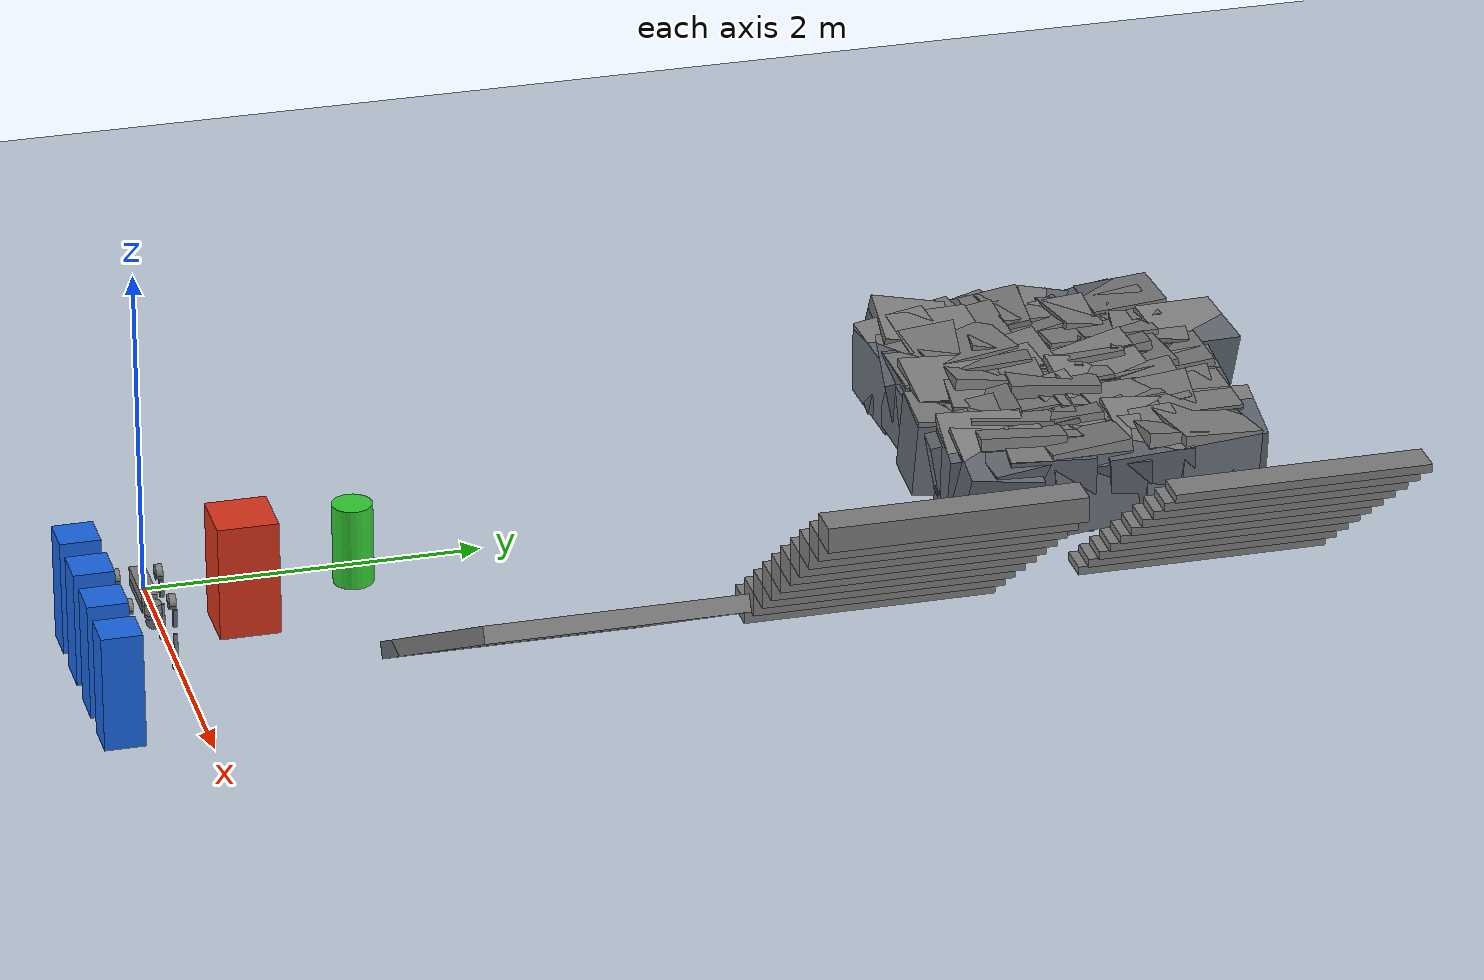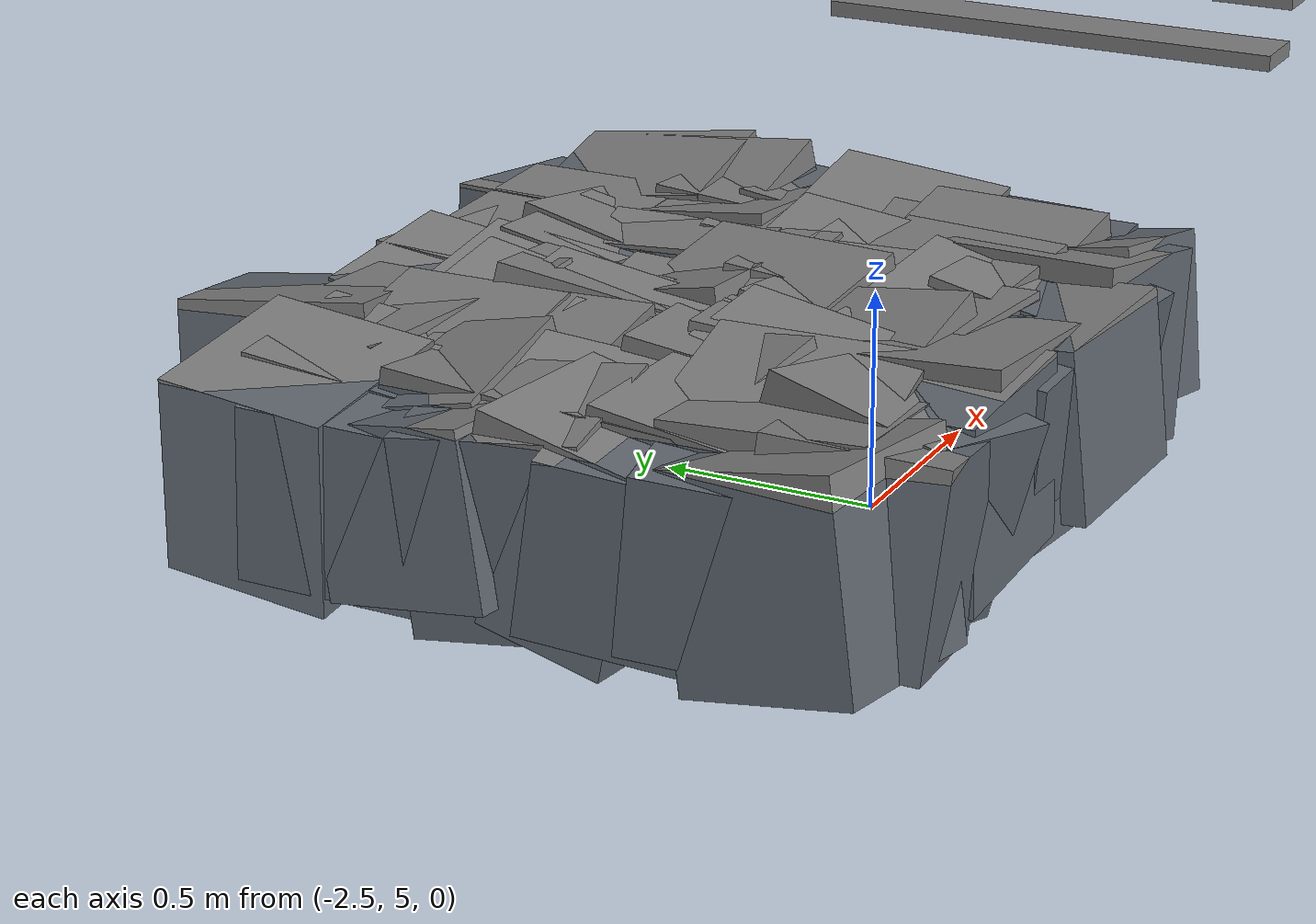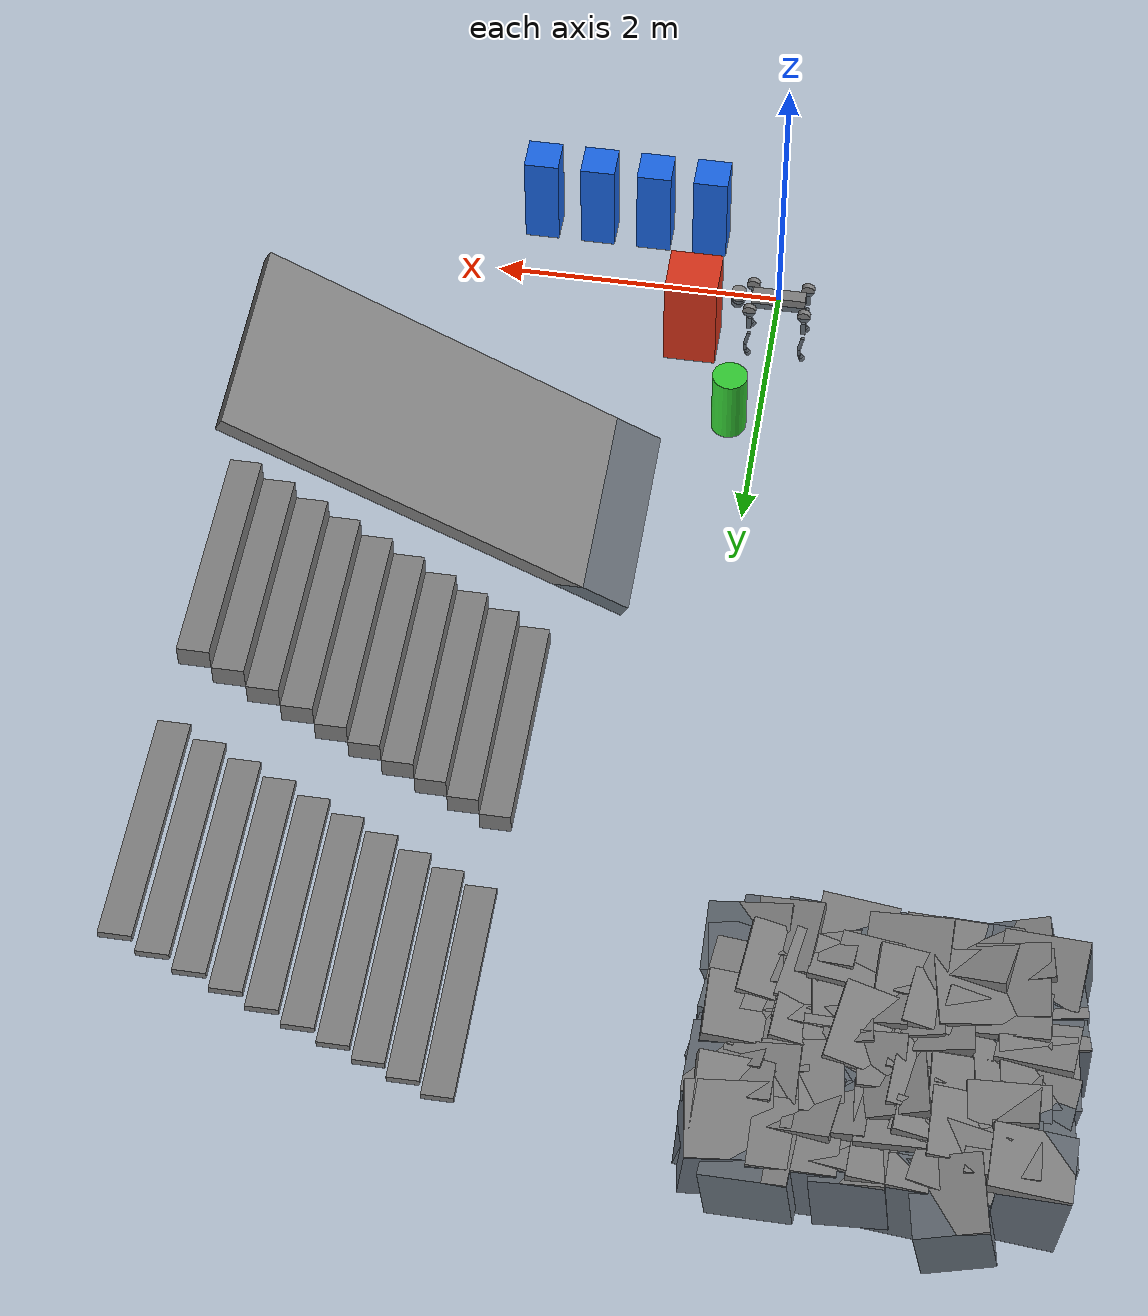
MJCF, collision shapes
<mujoco model="go2 scene">
  <include file="go2_rars01.xml" />

  <statistic center="0 0 0.1" extent="0.8" />

  <visual>
    <headlight diffuse="0.6 0.6 0.6" ambient="0.3 0.3 0.3" specular="0 0 0" />
    <rgba haze="0.15 0.25 0.35 1" />
    <global azimuth="-130" elevation="-20" />
  </visual>

  <asset>
    <texture type="skybox" builtin="gradient" rgb1="0.3 0.5 0.7" rgb2="0 0 0" width="512" height="3072" />
    <texture type="2d" name="groundplane" builtin="checker" mark="edge" rgb1="0.2 0.3 0.4" rgb2="0.1 0.2 0.3" markrgb="0.8 0.8 0.8" width="300" height="300" />
    <material name="groundplane" texture="groundplane" texuniform="true" texrepeat="5 5" reflectance="0.2" /></asset>

  <worldbody>
    <light pos="0 0 1.5" dir="0 0 -1" directional="true" />
    <geom name="floor" group="0" size="0 0 0.05" type="plane" material="groundplane" /><geom pos="2.0 2.0 0.5" type="box" size="1.5 0.75 0.05" quat="0.968912421710645 0.0 -0.24740395925452296 0.0" /><geom pos="1.2 4.0 0.075" type="box" size="0.1 0.75 0.075" quat="1.0 0.0 0.0 0.0" /><geom pos="1.4 4.0 0.22499999999999998" type="box" size="0.1 0.75 0.075" quat="1.0 0.0 0.0 0.0" /><geom pos="1.6 4.0 0.375" type="box" size="0.1 0.75 0.075" quat="1.0 0.0 0.0 0.0" /><geom pos="1.8 4.0 0.525" type="box" size="0.1 0.75 0.075" quat="1.0 0.0 0.0 0.0" /><geom pos="2.0 4.0 0.675" type="box" size="0.1 0.75 0.075" quat="1.0 0.0 0.0 0.0" /><geom pos="2.2 4.0 0.8250000000000001" type="box" size="0.1 0.75 0.075" quat="1.0 0.0 0.0 0.0" /><geom pos="2.4 4.0 0.9750000000000001" type="box" size="0.1 0.75 0.075" quat="1.0 0.0 0.0 0.0" /><geom pos="2.5999999999999996 4.0 1.125" type="box" size="0.1 0.75 0.075" quat="1.0 0.0 0.0 0.0" /><geom pos="2.8 4.0 1.275" type="box" size="0.1 0.75 0.075" quat="1.0 0.0 0.0 0.0" /><geom pos="3.0 4.0 1.4249999999999998" type="box" size="0.1 0.75 0.075" quat="1.0 0.0 0.0 0.0" /><geom pos="1.2 6.0 0.075" type="box" size="0.1 0.75 0.024999999999999994" quat="1.0 0.0 0.0 0.0" /><geom pos="1.4 6.0 0.22499999999999998" type="box" size="0.1 0.75 0.024999999999999994" quat="1.0 0.0 0.0 0.0" /><geom pos="1.6 6.0 0.375" type="box" size="0.1 0.75 0.024999999999999994" quat="1.0 0.0 0.0 0.0" /><geom pos="1.8 6.0 0.525" type="box" size="0.1 0.75 0.024999999999999994" quat="1.0 0.0 0.0 0.0" /><geom pos="2.0 6.0 0.675" type="box" size="0.1 0.75 0.024999999999999994" quat="1.0 0.0 0.0 0.0" /><geom pos="2.2 6.0 0.8250000000000001" type="box" size="0.1 0.75 0.024999999999999994" quat="1.0 0.0 0.0 0.0" /><geom pos="2.4 6.0 0.9750000000000001" type="box" size="0.1 0.75 0.024999999999999994" quat="1.0 0.0 0.0 0.0" /><geom pos="2.5999999999999996 6.0 1.125" type="box" size="0.1 0.75 0.024999999999999994" quat="1.0 0.0 0.0 0.0" /><geom pos="2.8 6.0 1.275" type="box" size="0.1 0.75 0.024999999999999994" quat="1.0 0.0 0.0 0.0" /><geom pos="3.0 6.0 1.4249999999999998" type="box" size="0.1 0.75 0.024999999999999994" quat="1.0 0.0 0.0 0.0" /><geom pos="-2.3004568480001155 5.230133099821309 -0.25" type="box" size="0.2667418434232123 0.23249216246593754 0.2715603840154582" quat="0.9937514109759715 -0.09011523303710722 0.04584049177774514 -0.04728665003473938" /><geom pos="-2.3004568480001155 5.391515746812814 -0.25" type="box" size="0.2505265313539923 0.2412016313894627 0.2264599735410741" quat="0.9947855832976967 0.0430479213794962 0.004496328850963352 0.0923488102512985" /><geom pos="-2.3004568480001155 5.632708194664771 -0.25" type="box" size="0.2744568938089314 0.24992449427731162 0.22801643019685697" quat="0.9927267717486197 0.07160131296835394 -0.005361370104009311 0.09663366051940456" /><geom pos="-2.3004568480001155 5.798990692476225 -0.25" type="box" size="0.24325500647900072 0.2253568952181176 0.26629093934549475" quat="0.9942381647366705 0.09525301325965287 0.00794678229822832 -0.048519932987572345" /><geom pos="-2.3004568480001155 5.973541127254212 -0.25" type="box" size="0.2398510354361266 0.24285052907373605 0.26474659664781297" quat="0.9964084612238755 -0.04106533003165011 -0.0363795415854814 0.06450074437470632" /><geom pos="-2.3004568480001155 6.1770510315939235 -0.25" type="box" size="0.25720829764278585 0.23711879563200236 0.22878298749776027" quat="0.9937658772683013 -0.08834725270306294 0.0169573991826565 -0.06585279591592566" /><geom pos="-2.3004568480001155 6.407180520840007 -0.25" type="box" size="0.24754562515074474 0.25947160159627974 0.23928331743280107" quat="0.9958964892628885 0.04305664599570697 -0.045399565427206114 0.0653849169799509" /><geom pos="-2.3004568480001155 6.629340270719652 -0.25" type="box" size="0.2547590853159438 0.2314305783929404 0.268237133040538" quat="0.9972993669391019 0.044601800582484905 -0.05693885512370222 -0.012752210195468728" /><geom pos="-2.1403960142105545 5.169451405171494 -0.25" type="box" size="0.24860553780818326 0.2298644058617868 0.2557271181931712" quat="0.9914709750904385 0.03140703504746152 0.09964006753412274 0.07791508611647713" /><geom pos="-2.1403960142105545 5.365443034016214 -0.25" type="box" size="0.2291512386430681 0.25867181712863563 0.27347983292603073" quat="0.9971489888939771 -0.012801738465963004 0.06299248639499276 0.039521590273487665" /><geom pos="-2.1403960142105545 5.564856717019695 -0.25" type="box" size="0.23402731407731425 0.26579436660697997 0.2553901560684408" quat="0.9966301905043169 0.07818366455605208 0.024123866909938566 0.005798018388017237" /><geom pos="-2.1403960142105545 5.718290300524951 -0.25" type="box" size="0.26305873229776777 0.22976833293040352 0.2368622332864588" quat="0.9965179080213955 0.04103949917917902 0.06351715359390735 0.035119648334118" /><geom pos="-2.1403960142105545 5.937021976021513 -0.25" type="box" size="0.25829997576988234 0.23777318710233433 0.24146425783496483" quat="0.9934945982010286 0.06600502560370954 -0.06390951813814603 0.06728590812183728" /><geom pos="-2.1403960142105545 6.139922384241892 -0.25" type="box" size="0.23653538925627735 0.2436978135416446 0.240333142471557" quat="0.9965532548871666 0.03912419743215279 0.07314101139716957 0.0011400881032193077" /><geom pos="-2.1403960142105545 6.301771003196722 -0.25" type="box" size="0.2531389078197739 0.24480016352294456 0.2504805521908677" quat="0.9929737504129765 -0.09338521837305551 -0.05209114295204799 0.05068377261169358" /><geom pos="-2.1403960142105545 6.507865639382873 -0.25" type="box" size="0.2276301834358782 0.26649607136000125 0.257729055845175" quat="0.9978879006215207 0.06064426844548832 -0.013463574733080436 0.01899322651086425" /><geom pos="-1.8913580852312173 5.241268832370592 -0.25" type="box" size="0.2626219760929962 0.24411637158707777 0.2607077194593069" quat="0.9875355197654081 0.10169530993875045 0.08550302030532102 -0.0843853936223203" /><geom pos="-1.8913580852312173 5.471949466771439 -0.25" type="box" size="0.2602767497051143 0.273953920565642 0.27337839148294096" quat="0.9958713146560139 0.025763189149319767 -0.029456230012379816 0.08190795592381117" /><geom pos="-1.8913580852312173 5.710208626029221 -0.25" type="box" size="0.23410940494091387 0.2367080582839282 0.24568630976566702" quat="0.9897189155738972 -0.08734156791079449 -0.08044028159717216 -0.07973255148733269" /><geom pos="-1.8913580852312173 5.955348349118732 -0.25" type="box" size="0.23982897662316305 0.23800117277662278 0.2398222460937144" quat="0.9952418019176436 0.05430372873578345 -0.07866554086694699 0.018883681876785678" /><geom pos="-1.8913580852312173 6.185979720159965 -0.25" type="box" size="0.2462147197863695 0.23219524695551647 0.2711440904263542" quat="0.9982254065785714 -0.011567722302419247 -0.05642983491193701 0.015096330467764624" /><geom pos="-1.8913580852312173 6.4251426885516025 -0.25" type="box" size="0.23523910319808664 0.23480755129856565 0.2692163752500142" quat="0.9968448648091833 -0.003964163248548163 -0.07915930034105623 0.004290231091029004" /><geom pos="-1.8913580852312173 6.632084792336812 -0.25" type="box" size="0.2603836051705248 0.2293842626424212 0.26630834239542744" quat="0.9942544585183625 -0.03847116757612908 -0.015013446725097508 -0.09875544237721844" /><geom pos="-1.8913580852312173 6.8677842882805304 -0.25" type="box" size="0.22682173018977822 0.25620373771208627 0.2590106178200968" quat="0.9917966349039323 -0.04622336464814654 0.08055478391174208 0.08782802709142892" /><geom pos="-1.6798294713431876 5.216238277949043 -0.25" type="box" size="0.2632521212844899 0.2402658144953708 0.24841784794218005" quat="0.9997799409897189 -0.003276721590235065 -0.020688201582637684 -0.0011536921125319332" /><geom pos="-1.6798294713431876 5.386856114907906 -0.25" type="box" size="0.26672713061026987 0.24844660721532208 0.23313692749728976" quat="0.9952829473710711 0.07407221696833978 -0.013859958088202382 -0.061098796285541615" /><geom pos="-1.6798294713431876 5.591071097018706 -0.25" type="box" size="0.23246847630546943 0.25230360402816476 0.26125984794942364" quat="0.9935207484320158 0.05042174247872936 -0.08002771662650093 -0.06300583220658486" /><geom pos="-1.6798294713431876 5.741842048926222 -0.25" type="box" size="0.2535630104904315 0.24795359449084495 0.2463449562851746" quat="0.9940727390106978 0.07645301721135746 0.05888786747389042 0.0500654050161026" /><geom pos="-1.6798294713431876 5.905363306176914 -0.25" type="box" size="0.27072344768948214 0.22692489903878324 0.25032679935595825" quat="0.9977180574934882 0.021245636186625227 -0.03211110830763 -0.05546329793388168" /><geom pos="-1.6798294713431876 6.15296609717695 -0.25" type="box" size="0.27075061156330754 0.2600061673600183 0.2621071701382346" quat="0.9954121140543586 0.05159092291611383 -0.07045052751410034 -0.039112952323769316" /><geom pos="-1.6798294713431876 6.366743216660697 -0.25" type="box" size="0.23450857272964362 0.2407163023193743 0.2666025413500864" quat="0.9922247127582067 0.07575177513114786 -0.09279467536142899 -0.03377774683043695" /><geom pos="-1.6798294713431876 6.551643355280989 -0.25" type="box" size="0.26049187301894283 0.27022426120507964 0.23971723837257095" quat="0.9892928509960738 -0.10100280472577938 -0.0600366609488913 -0.0865660889014509" /><geom pos="-1.4765163584841376 5.243937334992851 -0.25" type="box" size="0.26136834696977396 0.2523172670818107 0.2654694500155096" quat="0.9985049365903822 -0.02950096022889073 0.04556436314956665 -0.00644001249885379" /><geom pos="-1.4765163584841376 5.480410750662077 -0.25" type="box" size="0.2440914363505842 0.25654690520997264 0.2583881995141055" quat="0.9933328589616501 -0.06913812509184492 -0.09136238609169695 -0.012754033616475648" /><geom pos="-1.4765163584841376 5.671235516827659 -0.25" type="box" size="0.267137477516981 0.23005560417856358 0.24452561156808555" quat="0.9940257850736071 0.051254350696765066 0.06721387336133489 0.06905088972068747" /><geom pos="-1.4765163584841376 5.845102562083532 -0.25" type="box" size="0.25941410073895627 0.24466997366532126 0.24443215657180062" quat="0.9984794775297112 0.04477338473757268 0.03200898692652765 0.0030824871571849344" /><geom pos="-1.4765163584841376 6.010575440437007 -0.25" type="box" size="0.26435857520274697 0.23236342580867092 0.24142028047228445" quat="0.9988398514879413 0.024463332973345336 -0.03172619531082579 0.026719748323726804" /><geom pos="-1.4765163584841376 6.23782046041485 -0.25" type="box" size="0.24731691273440778 0.25843666448052316 0.2710876107672864" quat="0.9885864324283745 0.08290722719127752 0.09790149547395594 0.07898452052114466" /><geom pos="-1.4765163584841376 6.44930631573619 -0.25" type="box" size="0.24193344533885286 0.23138582308048286 0.26168496711942596" quat="0.9958233764692439 0.07917403843656666 -0.02581247498391686 0.03742980964745321" /><geom pos="-1.4765163584841376 6.684566195548674 -0.25" type="box" size="0.2472173291178155 0.22976521336220676 0.24579788179058876" quat="0.9972709256786985 0.05344665943858395 -0.04768801960369878 -0.01788877237504326" /><geom pos="-1.2836828006996281 5.233446740475545 -0.25" type="box" size="0.270942684859463 0.26600855236486054 0.2296077997678793" quat="0.9990002946606846 0.04415559586693775 -0.005684427367154231 -0.004047456856993205" /><geom pos="-1.2836828006996281 5.446684944046352 -0.25" type="box" size="0.27057165150527335 0.26104170501325036 0.24775613085616044" quat="0.9973272818901999 -0.03585324604105891 -0.0027768638379429824 -0.0636013095230833" /><geom pos="-1.2836828006996281 5.611103486144901 -0.25" type="box" size="0.2581954354219156 0.2469368219651923 0.24036756098125636" quat="0.9936312966887875 0.09017870480124786 0.06642617029778168 -0.012337396017719982" /><geom pos="-1.2836828006996281 5.849517593571514 -0.25" type="box" size="0.27467145474022 0.27400068490578466 0.2735778012229137" quat="0.9916347981074018 -0.026604654441189333 -0.09638112447022586 -0.08162902909144508" /><geom pos="-1.2836828006996281 6.08784409988581 -0.25" type="box" size="0.2572816459813805 0.259301331764223 0.2497915058099132" quat="0.9950820743411886 -0.09067596276893386 0.03956525467724424 0.004911794284056946" /><geom pos="-1.2836828006996281 6.268302962193964 -0.25" type="box" size="0.26840679557573427 0.24608249031753818 0.23034148085004616" quat="0.9987264631057741 -0.005999555326392561 0.04977616980667998 0.005638275223276664" /><geom pos="-1.2836828006996281 6.452965455077986 -0.25" type="box" size="0.2696615447897929 0.26081661469724077 0.23398787146820288" quat="0.9989612372925927 0.017841649129852092 -0.019554827865776687 -0.03709084321393417" /><geom pos="-1.2836828006996281 6.654951201007293 -0.25" type="box" size="0.22785209566881853 0.27041411182510716 0.22695289141832098" quat="0.9976808082331692 0.03654751908061864 0.0573881794303459 -0.001969922316485568" /><geom pos="-1.1022240076453693 5.169887315101382 -0.25" type="box" size="0.24568156256299087 0.2635458084468657 0.23696692094202776" quat="0.9976285263249234 -0.04727185302576902 -0.02566280149473634 -0.042943171677399916" /><geom pos="-1.1022240076453693 5.372429939447899 -0.25" type="box" size="0.2516688550863544 0.23578708851703795 0.24914385885416668" quat="0.9941624724694053 0.09013134822717399 -0.04630034936782676 -0.03706205672502057" /><geom pos="-1.1022240076453693 5.6137494696611645 -0.25" type="box" size="0.22749023618822067 0.24285395850499641 0.24637028208799674" quat="0.9967312863374155 0.005751481746199076 -0.05486898441393531 0.059017436773105766" /><geom pos="-1.1022240076453693 5.770800416787369 -0.25" type="box" size="0.2276194600060337 0.2435732223750303 0.24204342448231905" quat="0.9920706838842173 0.06455834978420948 0.0818398501660238 0.0702155009627047" /><geom pos="-1.1022240076453693 6.010227875016116 -0.25" type="box" size="0.23543804149884645 0.2269013461561202 0.24892831056369055" quat="0.998711981938567 -0.03666909121332045 -0.03413771353158816 0.008023178719471372" /><geom pos="-1.1022240076453693 6.1826505134127485 -0.25" type="box" size="0.24899669756063647 0.26476302864941026 0.23114478496336716" quat="0.9953459379310479 0.017391324820533183 -0.06570106494388459 0.06831819472431061" /><geom pos="-1.1022240076453693 6.388783936685348 -0.25" type="box" size="0.25120043442125733 0.26689280714606495 0.24739435973617288" quat="0.9952950358990744 0.0890051431533475 0.03711428378869703 -0.009402443606032512" /><geom pos="-1.1022240076453693 6.587736073361409 -0.25" type="box" size="0.2642095458486848 0.24402513111878274 0.2283749318977764" quat="0.9945884112549138 0.06171449469705757 0.01930392852096236 -0.0813177206110156" /><geom pos="-0.9187514747556267 5.228003088997437 -0.25" type="box" size="0.24129840773289313 0.24455559893829074 0.2445571703602056" quat="0.9953979563394082 0.08620026031447912 0.017037154839366485 -0.03823818761429045" /><geom pos="-0.9187514747556267 5.477124560461694 -0.25" type="box" size="0.24144830521194344 0.24988466026108996 0.2605757117908711" quat="0.9930966738408729 -0.02303914715636593 -0.07543241677172038 -0.08682248904793939" /><geom pos="-0.9187514747556267 5.6503609706110804 -0.25" type="box" size="0.23011493841284475 0.26688543937158404 0.23459245932111464" quat="0.995309745085509 0.0812194368838277 -0.028988475523879075 -0.043835860854957456" /><geom pos="-0.9187514747556267 5.8167410379088915 -0.25" type="box" size="0.2696701537399713 0.22808315813449612 0.24632246265018862" quat="0.9941630275322185 0.03659276523626464 -0.09418317633389955 -0.03782027916336502" /><geom pos="-0.9187514747556267 5.973448532783488 -0.25" type="box" size="0.26529485159027155 0.2568090828246225 0.22616198518784458" quat="0.9934152082258639 -0.0668204374116078 0.015261332203502648 0.09180601804380455" /><geom pos="-0.9187514747556267 6.208232057412713 -0.25" type="box" size="0.2463750931460119 0.23519736105411657 0.2618256268798009" quat="0.9980851779059088 -0.01670862812995911 -3.238808720187859e-05 0.05955500265768949" /><geom pos="-0.9187514747556267 6.439579230099216 -0.25" type="box" size="0.2671845676845725 0.23031566769931494 0.24269863858722673" quat="0.9922913628004445 0.08627005615594627 0.0653962412457561 -0.060321309281323385" /><geom pos="-0.9187514747556267 6.633593518531561 -0.25" type="box" size="0.27010683807652197 0.24026832629919917 0.2557918997199297" quat="0.9999490997296441 0.00028597626760271176 -0.008743036015975394 0.005027473388523378" /><geom pos="-0.6893496373603325 5.248968856916747 -0.25" type="box" size="0.2534396264226809 0.2550821014195557 0.2650999344163818" quat="0.9951379017729395 -0.009374906590221065 0.08659926506304164 -0.04596993443455758" /><geom pos="-0.6893496373603325 5.461239078170235 -0.25" type="box" size="0.27229416577728716 0.26237025850176243 0.2609095281015494" quat="0.9938642581071668 -0.016468144238788375 -0.09891284963880534 -0.04667852674145426" /><geom pos="-0.6893496373603325 5.687178260089661 -0.25" type="box" size="0.23752403278908404 0.24697938830167748 0.22849345269591703" quat="0.9934662197384913 -0.04679303055164773 0.04759125915532222 -0.09257620959142457" /><geom pos="-0.6893496373603325 5.872882308537633 -0.25" type="box" size="0.24532351042284706 0.2346108686684232 0.23000406308837146" quat="0.9927088825119093 -0.020825844871975006 -0.07387314031868909 -0.0929414757079957" /><geom pos="-0.6893496373603325 6.041093594701471 -0.25" type="box" size="0.2400001363070752 0.23338893797592625 0.23790746686600803" quat="0.9938226730954234 0.05804194043958964 0.018064293769886098 0.09285100366754209" /><geom pos="-0.6893496373603325 6.255174847428153 -0.25" type="box" size="0.23526596901866062 0.24028315614672 0.25067741337911276" quat="0.9968794677864197 -0.0562851518151626 0.055258342000963814 0.003134330919540954" /><geom pos="-0.6893496373603325 6.482563337699631 -0.25" type="box" size="0.2371955841450388 0.23449361110299885 0.22578295347747088" quat="0.9983417083561725 0.019060355462012728 0.0390427253010296 -0.037765087146858146" /><geom pos="-0.6893496373603325 6.720404792567244 -0.25" type="box" size="0.2691396588773104 0.24560338138780002 0.22875047396233128" quat="0.9977277785730543 -0.00018196030407207167 0.05888258853415548 -0.0327427476190394" /><geom pos="-0.5024823808281569 5.243215256907448 -0.25" type="box" size="0.2664190000950855 0.23193429497031293 0.2256412468995084" quat="0.9923480752257597 -0.0775266795954823 0.096093780616666 -0.0009470340146058532" /><geom pos="-0.5024823808281569 5.408443418302384 -0.25" type="box" size="0.22988754041124168 0.23383904290144142 0.24112107194436588" quat="0.9950978972186256 0.02104571309984771 0.06552972397065362 0.07101484483907931" /><geom pos="-0.5024823808281569 5.593298346565085 -0.25" type="box" size="0.23937371319909267 0.2613467949248377 0.24575122985464729" quat="0.9984691487491184 -0.007621815772156767 0.010729111312567314 -0.053722928912984906" /><geom pos="-0.5024823808281569 5.833573467357344 -0.25" type="box" size="0.2621981400994321 0.24827277799235026 0.2599489001761954" quat="0.9965799738925856 0.0461064749899981 -0.06814681716564386 0.00765244473635177" /><geom pos="-0.5024823808281569 5.987211314681463 -0.25" type="box" size="0.23685424606606761 0.22901316218866397 0.22658193235149277" quat="0.992587295998121 0.042095349114379794 0.090020559870156 -0.06996241996058189" /><geom pos="-0.5024823808281569 6.191809900984576 -0.25" type="box" size="0.2697477262181022 0.26160032283159856 0.2514154359253294" quat="0.9987428184279926 0.03211553967794984 0.03713990933426557 -0.010099598227023016" /><geom pos="-0.5024823808281569 6.411285541920249 -0.25" type="box" size="0.26327819993915696 0.2714861589666563 0.2579565419996769" quat="0.9938745790994166 -0.05002470116842947 -0.097675298645099 0.01305321138870088" /><geom pos="-0.5024823808281569 6.5701617398718914 -0.25" type="box" size="0.26691018196306854 0.2535040767291905 0.26963989926936244" quat="0.9956469229609891 -0.050958369126028226 -0.03839181101974538 0.06794496494188768" />
    <!-- Stage4D semantic test landmarks; static collision geometry only. -->
    <body name="stage4d_landmarks" pos="0 0 0">
      <geom name="stage4d_obstacle_single_01" type="box" pos="0.55 0.48 0.35" size="0.18 0.18 0.35" rgba="0.85 0.2 0.1 1" group="0"/>
      <geom name="stage4d_corridor_left_01" type="box" pos="0.55 -0.48 0.35" size="0.12 0.12 0.35" rgba="0.1 0.4 0.9 1" group="0"/>
      <geom name="stage4d_corridor_right_01" type="box" pos="0.95 -0.48 0.35" size="0.12 0.12 0.35" rgba="0.1 0.4 0.9 1" group="0"/>
      <geom name="stage4d_corridor_left_02" type="box" pos="1.35 -0.48 0.35" size="0.12 0.12 0.35" rgba="0.1 0.4 0.9 1" group="0"/>
      <geom name="stage4d_corridor_right_02" type="box" pos="1.75 -0.48 0.35" size="0.12 0.12 0.35" rgba="0.1 0.4 0.9 1" group="0"/>
      <geom name="stage4d_landmark_d3" type="cylinder" pos="0.2 1.2 0.25" size="0.12 0.25" contype="0" conaffinity="0" rgba="0.2 0.8 0.2 1" group="0"/>
    </body>
</worldbody>
</mujoco>

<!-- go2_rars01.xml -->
<mujoco model="go2_rars01">
  <compiler angle="radian" />
  <option timestep="0.002" cone="elliptic" impratio="100" />
  <default>
    <default class="robot_collision">
      <geom group="3" />
    </default>
    <default class="go2_collision">
      <geom group="3" friction=".8" margin=".001" condim="1" />
    </default>
    <default class="go2_leg">
      <joint damping=".1" armature=".01" frictionloss=".2" />
      <geom group="3" friction=".8" margin=".001" condim="1" />
    </default>
    <default class="go2_foot">
      <geom group="3" priority="1" condim="6" friction=".8 .02 .01" />
    </default>
  </default>
  <asset>
    <mesh name="arm_mount_link" content_type="model/obj" file="assets/rars01/arm_mount_link.obj" />
    <mesh name="base_link" content_type="model/obj" file="assets/rars01/base_link.obj" />
    <mesh name="link1_m0" content_type="model/obj" file="assets/rars01/link1_m0.obj" />
    <mesh name="link2_m1" content_type="model/obj" file="assets/rars01/link2_m1.obj" />
    <mesh name="link2_m2" content_type="model/obj" file="assets/rars01/link2_m2.obj" />
    <mesh name="link_3_m3" content_type="model/obj" file="assets/rars01/link_3_m3.obj" />
    <mesh name="link_4_m4" content_type="model/obj" file="assets/rars01/link_4_m4.obj" />
    <mesh name="link_5_m5" content_type="model/obj" file="assets/rars01/link_5_m5.obj" />
    <mesh name="End_link" content_type="model/obj" file="assets/rars01/End_link.obj" />
    <mesh name="gripper_left" content_type="model/obj" file="assets/rars01/gripper_left.obj" />
    <mesh name="gripper_right" content_type="model/obj" file="assets/rars01/gripper_right.obj" />
    <material name="metal" rgba=".9 .95 .95 1" />
    <material name="black" rgba="0 0 0 1" />
    <material name="white" rgba="1 1 1 1" />
    <material name="gray" rgba="0.671705 0.692426 0.774270 1" />
    <mesh file="../go2/assets/base_0.obj" />
    <mesh file="../go2/assets/base_1.obj" />
    <mesh file="../go2/assets/base_2.obj" />
    <mesh file="../go2/assets/base_3.obj" />
    <mesh file="../go2/assets/base_4.obj" />
    <mesh file="../go2/assets/hip_0.obj" />
    <mesh file="../go2/assets/hip_1.obj" />
    <mesh file="../go2/assets/thigh_0.obj" />
    <mesh file="../go2/assets/thigh_1.obj" />
    <mesh file="../go2/assets/thigh_mirror_0.obj" />
    <mesh file="../go2/assets/thigh_mirror_1.obj" />
    <mesh file="../go2/assets/calf_0.obj" />
    <mesh file="../go2/assets/calf_1.obj" />
    <mesh file="../go2/assets/calf_mirror_0.obj" />
    <mesh file="../go2/assets/calf_mirror_1.obj" />
    <mesh file="../go2/assets/foot.obj" />
  </asset>
  <worldbody>
    <body name="base">
      <freejoint name="base_freejoint" />
      <inertial pos="0.021112 0 -0.005366" quat="-0.000543471 0.713435 -0.00173769 0.700719" mass="6.921" diaginertia="0.107027 0.0980771 0.0244531" />
      <geom name="base_collision" class="go2_collision" size="0.1881 0.04675 0.057" type="box" />
      <body name="Head_upper" pos="0.285 0 0.01">
        <inertial pos="0 0 0" mass="0.001" diaginertia="9.6e-06 9.6e-06 9.6e-06" />
        <geom class="go2_collision" size="0.05 0.045" type="cylinder" />
        <body name="Head_lower" pos="0.008 0 -0.07">
          <inertial pos="0 0 0" mass="0.001" diaginertia="9.6e-06 9.6e-06 9.6e-06" />
          <geom class="go2_collision" size="0.047" />
        </body>
      </body>
      <body name="FL_hip" childclass="go2_leg" pos="0.1934 0.0465 0">
        <inertial pos="-0.0054 0.00194 -0.000105" quat="0.497014 0.499245 0.505462 0.498237" mass="0.678" diaginertia="0.00088403 0.000596003 0.000479967" />
        <joint name="FL_hip_joint" pos="0 0 0" axis="1 0 0" range="-1.0472 1.0472" actuatorfrcrange="-23.7 23.7" />
        <geom size="0.046 0.02" pos="0 0.08 0" quat="0.707107 0.707107 0 0" type="cylinder" />
        <body name="FL_thigh" pos="0 0.0955 0">
          <inertial pos="-0.00374 -0.0223 -0.0327" quat="0.829533 0.0847635 -0.0200632 0.551623" mass="1.152" diaginertia="0.00594973 0.00584149 0.000878787" />
          <joint name="FL_thigh_joint" pos="0 0 0" axis="0 1 0" range="-1.5708 3.4907" actuatorfrcrange="-23.7 23.7" />
          <geom size="0.055 0.01225 0.017" pos="0 0 -0.1065" quat="0.707107 0 0.707107 0" type="box" />
          <body name="FL_calf" pos="0 0 -0.213">
            <inertial pos="0.00548 -0.000975 -0.115" quat="0.715503 -0.00296111 -0.00858046 0.698551" mass="0.154" diaginertia="0.00110008 0.00108027 3.25534e-05" />
            <joint name="FL_calf_joint" pos="0 0 0" axis="0 1 0" range="-2.7227 -0.83776" actuatorfrcrange="-35.55 35.55" />
            <geom size="0.012 0.06" pos="0.008 0 -0.06" quat="0.994493 0 -0.104807 0" type="cylinder" />
            <body name="FL_calflower" pos="0.02 0 -0.148" quat="0.999688 0 0.0249974 0">
              <geom size="0.011 0.0325" type="cylinder" />
              <body name="FL_calflower1" pos="-0.01 0 -0.04" quat="0.971338 0 0.237703 0">
                <geom size="0.0155 0.015" type="cylinder" />
              </body>
            </body>
            <body name="FL_foot" pos="0 0 -0.213">
              <inertial pos="0 0 0" mass="0.04" diaginertia="9.6e-06 9.6e-06 9.6e-06" />
              <geom name="FL_foot_collision" class="go2_foot" size="0.022" pos="-0.002 0 0" />
            </body>
            <geom mesh="calf_0" material="gray" type="mesh" contype="0" conaffinity="0" group="2" />
            <geom mesh="calf_1" material="black" type="mesh" contype="0" conaffinity="0" group="2" />
            <geom pos="0 0 -0.213" mesh="foot" material="black" type="mesh" contype="0" conaffinity="0" group="2" />
          </body>
          <geom mesh="thigh_0" material="metal" type="mesh" contype="0" conaffinity="0" group="2" />
          <geom mesh="thigh_1" material="gray" type="mesh" contype="0" conaffinity="0" group="2" />
        </body>
        <geom mesh="hip_0" material="metal" type="mesh" contype="0" conaffinity="0" group="2" />
        <geom mesh="hip_1" material="gray" type="mesh" contype="0" conaffinity="0" group="2" />
      </body>
      <body name="FR_hip" childclass="go2_leg" pos="0.1934 -0.0465 0">
        <inertial pos="-0.0054 -0.00194 -0.000105" quat="0.498237 0.505462 0.499245 0.497014" mass="0.678" diaginertia="0.00088403 0.000596003 0.000479967" />
        <joint name="FR_hip_joint" pos="0 0 0" axis="1 0 0" range="-1.0472 1.0472" actuatorfrcrange="-23.7 23.7" />
        <geom size="0.046 0.02" pos="0 -0.08 0" quat="0.707107 0.707107 0 0" type="cylinder" />
        <body name="FR_thigh" pos="0 -0.0955 0">
          <inertial pos="-0.00374 0.0223 -0.0327" quat="0.551623 -0.0200632 0.0847635 0.829533" mass="1.152" diaginertia="0.00594973 0.00584149 0.000878787" />
          <joint name="FR_thigh_joint" pos="0 0 0" axis="0 1 0" range="-1.5708 3.4907" actuatorfrcrange="-23.7 23.7" />
          <geom size="0.055 0.01225 0.017" pos="0 0 -0.1065" quat="0.707107 0 0.707107 0" type="box" />
          <body name="FR_calf" pos="0 0 -0.213">
            <inertial pos="0.00548 0.000975 -0.115" quat="0.698551 -0.00858046 -0.00296111 0.715503" mass="0.154" diaginertia="0.00110008 0.00108027 3.25534e-05" />
            <joint name="FR_calf_joint" pos="0 0 0" axis="0 1 0" range="-2.7227 -0.83776" actuatorfrcrange="-35.55 35.55" />
            <geom size="0.013 0.06" pos="0.01 0 -0.06" quat="0.995004 0 -0.0998334 0" type="cylinder" />
            <body name="FR_calflower" pos="0.02 0 -0.148" quat="0.999688 0 0.0249974 0">
              <geom size="0.011 0.0325" type="cylinder" />
              <body name="FR_calflower1" pos="-0.01 0 -0.04" quat="0.971338 0 0.237703 0">
                <geom size="0.0155 0.015" type="cylinder" />
              </body>
            </body>
            <body name="FR_foot" pos="0 0 -0.213">
              <inertial pos="0 0 0" mass="0.04" diaginertia="9.6e-06 9.6e-06 9.6e-06" />
              <geom name="FR_foot_collision" class="go2_foot" size="0.022" pos="-0.002 0 0" />
            </body>
            <geom mesh="calf_mirror_0" material="gray" type="mesh" contype="0" conaffinity="0" group="2" />
            <geom mesh="calf_mirror_1" material="black" type="mesh" contype="0" conaffinity="0" group="2" />
            <geom pos="0 0 -0.213" mesh="foot" material="black" type="mesh" contype="0" conaffinity="0" group="2" />
          </body>
          <geom mesh="thigh_mirror_0" material="metal" type="mesh" contype="0" conaffinity="0" group="2" />
          <geom mesh="thigh_mirror_1" material="gray" type="mesh" contype="0" conaffinity="0" group="2" />
        </body>
        <geom mesh="hip_0" material="metal" quat="4.63268e-05 1 0 0" type="mesh" contype="0" conaffinity="0" group="2" />
        <geom mesh="hip_1" material="gray" quat="4.63268e-05 1 0 0" type="mesh" contype="0" conaffinity="0" group="2" />
      </body>
      <body name="RL_hip" childclass="go2_leg" pos="-0.1934 0.0465 0">
        <inertial pos="0.0054 0.00194 -0.000105" quat="0.505462 0.498237 0.497014 0.499245" mass="0.678" diaginertia="0.00088403 0.000596003 0.000479967" />
        <joint name="RL_hip_joint" pos="0 0 0" axis="1 0 0" range="-1.0472 1.0472" actuatorfrcrange="-23.7 23.7" />
        <geom size="0.046 0.02" pos="0 0.08 0" quat="0.707107 0.707107 0 0" type="cylinder" />
        <body name="RL_thigh" pos="0 0.0955 0">
          <inertial pos="-0.00374 -0.0223 -0.0327" quat="0.829533 0.0847635 -0.0200632 0.551623" mass="1.152" diaginertia="0.00594973 0.00584149 0.000878787" />
          <joint name="RL_thigh_joint" pos="0 0 0" axis="0 1 0" range="-0.5236 4.5379" actuatorfrcrange="-23.7 23.7" />
          <geom size="0.055 0.01225 0.017" pos="0 0 -0.1065" quat="0.707107 0 0.707107 0" type="box" />
          <body name="RL_calf" pos="0 0 -0.213">
            <inertial pos="0.00548 -0.000975 -0.115" quat="0.715503 -0.00296111 -0.00858046 0.698551" mass="0.154" diaginertia="0.00110008 0.00108027 3.25534e-05" />
            <joint name="RL_calf_joint" pos="0 0 0" axis="0 1 0" range="-2.7227 -0.83776" actuatorfrcrange="-35.55 35.55" />
            <geom size="0.013 0.06" pos="0.01 0 -0.06" quat="0.995004 0 -0.0998334 0" type="cylinder" />
            <body name="RL_calflower" pos="0.02 0 -0.148" quat="0.999688 0 0.0249974 0">
              <geom size="0.011 0.0325" type="cylinder" />
              <body name="RL_calflower1" pos="-0.01 0 -0.04" quat="0.971338 0 0.237703 0">
                <geom size="0.0155 0.015" type="cylinder" />
              </body>
            </body>
            <body name="RL_foot" pos="0 0 -0.213">
              <inertial pos="0 0 0" mass="0.04" diaginertia="9.6e-06 9.6e-06 9.6e-06" />
              <geom name="RL_foot_collision" class="go2_foot" size="0.022" pos="-0.002 0 0" />
            </body>
            <geom mesh="calf_0" material="gray" type="mesh" contype="0" conaffinity="0" group="2" />
            <geom mesh="calf_1" material="black" type="mesh" contype="0" conaffinity="0" group="2" />
            <geom pos="0 0 -0.213" mesh="foot" material="black" type="mesh" contype="0" conaffinity="0" group="2" />
          </body>
          <geom mesh="thigh_0" material="metal" type="mesh" contype="0" conaffinity="0" group="2" />
          <geom mesh="thigh_1" material="gray" type="mesh" contype="0" conaffinity="0" group="2" />
        </body>
        <geom mesh="hip_0" material="metal" quat="4.63268e-05 0 1 0" type="mesh" contype="0" conaffinity="0" group="2" />
        <geom mesh="hip_1" material="gray" quat="4.63268e-05 0 1 0" type="mesh" contype="0" conaffinity="0" group="2" />
      </body>
      <body name="RR_hip" childclass="go2_leg" pos="-0.1934 -0.0465 0">
        <inertial pos="0.0054 -0.00194 -0.000105" quat="0.499245 0.497014 0.498237 0.505462" mass="0.678" diaginertia="0.00088403 0.000596003 0.000479967" />
        <joint name="RR_hip_joint" pos="0 0 0" axis="1 0 0" range="-1.0472 1.0472" actuatorfrcrange="-23.7 23.7" />
        <geom size="0.046 0.02" pos="0 -0.08 0" quat="0.707107 0.707107 0 0" type="cylinder" />
        <body name="RR_thigh" pos="0 -0.0955 0">
          <inertial pos="-0.00374 0.0223 -0.0327" quat="0.551623 -0.0200632 0.0847635 0.829533" mass="1.152" diaginertia="0.00594973 0.00584149 0.000878787" />
          <joint name="RR_thigh_joint" pos="0 0 0" axis="0 1 0" range="-0.5236 4.5379" actuatorfrcrange="-23.7 23.7" />
          <geom size="0.055 0.01225 0.017" pos="0 0 -0.1065" quat="0.707107 0 0.707107 0" type="box" />
          <body name="RR_calf" pos="0 0 -0.213">
            <inertial pos="0.00548 0.000975 -0.115" quat="0.698551 -0.00858046 -0.00296111 0.715503" mass="0.154" diaginertia="0.00110008 0.00108027 3.25534e-05" />
            <joint name="RR_calf_joint" pos="0 0 0" axis="0 1 0" range="-2.7227 -0.83776" actuatorfrcrange="-35.55 35.55" />
            <geom size="0.013 0.06" pos="0.01 0 -0.06" quat="0.995004 0 -0.0998334 0" type="cylinder" />
            <body name="RR_calflower" pos="0.02 0 -0.148" quat="0.999688 0 0.0249974 0">
              <geom size="0.011 0.0325" type="cylinder" />
              <body name="RR_calflower1" pos="-0.01 0 -0.04" quat="0.971338 0 0.237703 0">
                <geom size="0.0155 0.015" type="cylinder" />
              </body>
            </body>
            <body name="RR_foot" pos="0 0 -0.213">
              <inertial pos="0 0 0" mass="0.04" diaginertia="9.6e-06 9.6e-06 9.6e-06" />
              <geom name="RR_foot_collision" class="go2_foot" size="0.022" pos="-0.002 0 0" />
            </body>
            <geom mesh="calf_mirror_0" material="gray" type="mesh" contype="0" conaffinity="0" group="2" />
            <geom mesh="calf_mirror_1" material="black" type="mesh" contype="0" conaffinity="0" group="2" />
            <geom pos="0 0 -0.213" mesh="foot" material="black" type="mesh" contype="0" conaffinity="0" group="2" />
          </body>
          <geom mesh="thigh_mirror_0" material="metal" type="mesh" contype="0" conaffinity="0" group="2" />
          <geom mesh="thigh_mirror_1" material="gray" type="mesh" contype="0" conaffinity="0" group="2" />
        </body>
        <geom mesh="hip_0" material="metal" quat="2.14617e-09 4.63268e-05 4.63268e-05 -1" type="mesh" contype="0" conaffinity="0" group="2" />
        <geom mesh="hip_1" material="gray" quat="2.14617e-09 4.63268e-05 4.63268e-05 -1" type="mesh" contype="0" conaffinity="0" group="2" />
      </body>
      <body name="imu" pos="-0.02557 0 0.04232">
        <inertial pos="0 0 0" mass="0" diaginertia="0 0 0" />
      </body>
      <body name="radar" pos="0.28945 0 -0.046825" quat="0.131316 0 0.991341 0">
        <inertial pos="0 0 0" mass="0" diaginertia="0 0 0" />
      </body>
      <body name="arm_mount_link" pos="-0.03 0 0.058">
        <inertial pos="-0.0378632 -0.00035942 0.0515037" quat="0.569027 0.413619 0.43648 0.560903" mass="0.804" diaginertia="0.00335243 0.00314949 0.00144672" />
        <geom type="mesh" contype="0" conaffinity="0" group="1" density="0" rgba="0.48627 0.48627 0.48627 1" mesh="arm_mount_link" />
        <body name="base_link" pos="0.074304 0 0.0145">
          <inertial pos="1.2e-06 2.671e-05 0.041626" quat="0.484838 0.51463 -0.500712 0.499374" mass="0.707345" diaginertia="0.000642027 0.000627802 0.000624991" />
          <geom type="mesh" contype="0" conaffinity="0" group="1" density="0" rgba="0.75294 0.75294 0.75294 1" mesh="base_link" />
          <body name="link1_m0" pos="0 0 0.0663">
            <inertial pos="0.0036805 0 0.0367635" quat="0.686024 0.686024 -0.171381 0.171381" mass="0.154063" diaginertia="0.000266122 0.000194538 0.00016746" />
            <joint name="joint1" pos="0 0 0" axis="0 0 1" range="-2.8 2.8" actuatorfrcrange="-27 27" />
            <geom type="mesh" contype="0" conaffinity="0" group="1" density="0" rgba="0.75294 0.75294 0.75294 1" mesh="link1_m0" />
            <body name="link2_m1" pos="0.02 -0.029675 0.075">
              <inertial pos="-0.125 0.027521 0.0018331" quat="0.0103747 0.707035 0.0103759 0.707027" mass="1.0582" diaginertia="0.0142481 0.0141349 0.00055358" />
              <joint name="joint2" pos="0 0 0" axis="0 1 0" range="0 3.6" actuatorfrcrange="-27 27" />
              <geom type="mesh" contype="0" conaffinity="0" group="1" density="0" rgba="0.75294 0.75294 0.75294 1" mesh="link2_m1" />
              <body name="link2_m2" pos="-0.25 0 0">
                <inertial pos="0.16246 0.0285909 0.0571144" quat="-0.0145093 0.720221 -0.00724343 0.693555" mass="0.676" diaginertia="0.00533132 0.00525507 0.000499408" />
                <joint name="joint3" pos="0 0 0" axis="0 -1 0" range="0 3.14" actuatorfrcrange="-27 27" />
                <geom type="mesh" contype="0" conaffinity="0" group="1" density="0" rgba="0.75294 0.75294 0.75294 1" mesh="link2_m2" />
                <body name="link_3_m3" pos="0.23295 0.003775 0.057071">
                  <inertial pos="0.0698267 0.025991 0.0619802" quat="-0.00331008 0.888947 -0.00701071 0.457944" mass="0.408" diaginertia="0.000599751 0.000548348 0.000222162" />
                  <joint name="joint4" pos="0 0 0" axis="0 -1 0" range="-2 1.4" actuatorfrcrange="-7 7" />
                  <geom type="mesh" contype="0" conaffinity="0" group="1" density="0" rgba="0.75294 0.75294 0.75294 1" mesh="link_3_m3" />
                  <body name="link_4_m4" pos="0.079811 0.02605 0.05">
                    <inertial pos="0.00032344 1.44e-06 -0.0491176" quat="0.978973 0.00168683 -0.203971 0.00228534" mass="0.32605" diaginertia="0.000152148 0.00014371 0.000126392" />
                    <joint name="joint5" pos="0 0 0" axis="0 0 -1" range="-1.57 1.57" actuatorfrcrange="-7 7" />
                    <geom type="mesh" contype="0" conaffinity="0" group="1" density="0" rgba="0.75294 0.75294 0.75294 1" mesh="link_4_m4" />
                    <body name="link_5_m5" pos="0.0235 0 -0.049">
                      <inertial pos="0.0106509 0 -3.33e-06" quat="0.707107 0.707107 0 0" mass="0.0262" diaginertia="8.25e-06 4.75e-06 4.64e-06" />
                      <joint name="joint6" pos="0 0 0" axis="1 0 0" range="-2 2" actuatorfrcrange="-7 7" />
                      <geom type="mesh" contype="0" conaffinity="0" group="1" density="0" rgba="0.75294 0.75294 0.75294 1" mesh="link_5_m5" />
                      <body name="End_link" pos="0.195 0 0">
                        <site name="virtual_payload_attach_site" pos="-0.04 0 0" size="0.008" rgba="1 0 0 0.8" group="3" />
                        <inertial pos="-0.135878 -0.00046489 0.00946022" quat="0.699313 0.712506 -0.04693 0.033084" mass="0.605271" diaginertia="0.00114366 0.00104867 0.000739474" />
                        <geom type="mesh" contype="0" conaffinity="0" group="1" density="0" rgba="0.75294 0.75294 0.75294 1" mesh="End_link" />
                        <body name="gripper_left" pos="-0.0375 0 0">
                          <inertial pos="-0.0322374 0.0142859 6.15e-06" quat="0.480746 0.480746 0.518539 0.518539" mass="0.0852993" diaginertia="6.06409e-05 5.513e-05 1.84191e-05" />
                          <joint name="gripper_left_joint" pos="0 0 0" axis="0 1 0" type="slide" range="0 0.05" actuatorfrcrange="-3 3" />
                          <geom type="mesh" contype="0" conaffinity="0" group="1" density="0" rgba="0.75294 0.75294 0.75294 1" mesh="gripper_left" />
                        </body>
                        <body name="gripper_right" pos="-0.0375 0 0">
                          <inertial pos="-0.0322374 -0.0142859 6.15e-06" quat="0.518539 0.518539 0.480746 0.480746" mass="0.0852993" diaginertia="6.06409e-05 5.513e-05 1.84191e-05" />
                          <joint name="gripper_right_joint" pos="0 0 0" axis="0 -1 0" type="slide" range="0 0.05" actuatorfrcrange="-3 3" />
                          <geom type="mesh" contype="0" conaffinity="0" group="1" density="0" rgba="0.75294 0.75294 0.75294 1" mesh="gripper_right" />
                        </body>
                      </body>
                    </body>
                  </body>
                </body>
              </body>
            </body>
          </body>
        </body>
      </body>
      <geom mesh="base_0" material="black" type="mesh" contype="0" conaffinity="0" group="2" />
      <geom mesh="base_1" material="black" type="mesh" contype="0" conaffinity="0" group="2" />
      <geom mesh="base_2" material="black" type="mesh" contype="0" conaffinity="0" group="2" />
      <geom mesh="base_3" material="white" type="mesh" contype="0" conaffinity="0" group="2" />
      <geom mesh="base_4" material="gray" type="mesh" contype="0" conaffinity="0" group="2" />
      <site name="imu" pos="-0.02557 0 0.04232" />
    </body>
    <body name="virtual_payload" pos="0 0 -10" gravcomp="1">
      <freejoint name="virtual_payload_freejoint" />
      <geom name="virtual_payload_geom" type="box" size="0.03 0.03 0.03" mass="0.5" contype="0" conaffinity="0" group="1" rgba="0.8 0.5 0.1 0" />
    </body>
  </worldbody>
  <equality>
    <weld name="virtual_payload_weld" body1="End_link" body2="virtual_payload" relpose="-0.04 0 0 1 0 0 0" active="false" />
  </equality>
  <actuator>
    <motor name="FR_hip" joint="FR_hip_joint" ctrlrange="-23.7 23.7" />
    <motor name="FR_thigh" joint="FR_thigh_joint" ctrlrange="-23.7 23.7" />
    <motor name="FR_calf" joint="FR_calf_joint" ctrlrange="-35.55 35.55" />
    <motor name="FL_hip" joint="FL_hip_joint" ctrlrange="-23.7 23.7" />
    <motor name="FL_thigh" joint="FL_thigh_joint" ctrlrange="-23.7 23.7" />
    <motor name="FL_calf" joint="FL_calf_joint" ctrlrange="-35.55 35.55" />
    <motor name="RR_hip" joint="RR_hip_joint" ctrlrange="-23.7 23.7" />
    <motor name="RR_thigh" joint="RR_thigh_joint" ctrlrange="-23.7 23.7" />
    <motor name="RR_calf" joint="RR_calf_joint" ctrlrange="-35.55 35.55" />
    <motor name="RL_hip" joint="RL_hip_joint" ctrlrange="-23.7 23.7" />
    <motor name="RL_thigh" joint="RL_thigh_joint" ctrlrange="-23.7 23.7" />
    <motor name="RL_calf" joint="RL_calf_joint" ctrlrange="-35.55 35.55" />
    <motor name="joint1_motor" joint="joint1" ctrlrange="-27 27" />
    <motor name="joint2_motor" joint="joint2" ctrlrange="-27 27" />
    <motor name="joint3_motor" joint="joint3" ctrlrange="-27 27" />
    <motor name="joint4_motor" joint="joint4" ctrlrange="-7 7" />
    <motor name="joint5_motor" joint="joint5" ctrlrange="-7 7" />
    <motor name="joint6_motor" joint="joint6" ctrlrange="-7 7" />
    <motor name="gripper_left_motor" joint="gripper_left_joint" ctrlrange="-3 3" />
    <motor name="gripper_right_motor" joint="gripper_right_joint" ctrlrange="-3 3" />
  </actuator>
  <sensor>
    <jointpos name="FR_hip_pos" joint="FR_hip_joint" />
    <jointpos name="FR_thigh_pos" joint="FR_thigh_joint" />
    <jointpos name="FR_calf_pos" joint="FR_calf_joint" />
    <jointpos name="FL_hip_pos" joint="FL_hip_joint" />
    <jointpos name="FL_thigh_pos" joint="FL_thigh_joint" />
    <jointpos name="FL_calf_pos" joint="FL_calf_joint" />
    <jointpos name="RR_hip_pos" joint="RR_hip_joint" />
    <jointpos name="RR_thigh_pos" joint="RR_thigh_joint" />
    <jointpos name="RR_calf_pos" joint="RR_calf_joint" />
    <jointpos name="RL_hip_pos" joint="RL_hip_joint" />
    <jointpos name="RL_thigh_pos" joint="RL_thigh_joint" />
    <jointpos name="RL_calf_pos" joint="RL_calf_joint" />
    <jointvel name="FR_hip_vel" joint="FR_hip_joint" />
    <jointvel name="FR_thigh_vel" joint="FR_thigh_joint" />
    <jointvel name="FR_calf_vel" joint="FR_calf_joint" />
    <jointvel name="FL_hip_vel" joint="FL_hip_joint" />
    <jointvel name="FL_thigh_vel" joint="FL_thigh_joint" />
    <jointvel name="FL_calf_vel" joint="FL_calf_joint" />
    <jointvel name="RR_hip_vel" joint="RR_hip_joint" />
    <jointvel name="RR_thigh_vel" joint="RR_thigh_joint" />
    <jointvel name="RR_calf_vel" joint="RR_calf_joint" />
    <jointvel name="RL_hip_vel" joint="RL_hip_joint" />
    <jointvel name="RL_thigh_vel" joint="RL_thigh_joint" />
    <jointvel name="RL_calf_vel" joint="RL_calf_joint" />
    <jointactuatorfrc name="FR_hip_torque" joint="FR_hip_joint" />
    <jointactuatorfrc name="FR_thigh_torque" joint="FR_thigh_joint" />
    <jointactuatorfrc name="FR_calf_torque" joint="FR_calf_joint" />
    <jointactuatorfrc name="FL_hip_torque" joint="FL_hip_joint" />
    <jointactuatorfrc name="FL_thigh_torque" joint="FL_thigh_joint" />
    <jointactuatorfrc name="FL_calf_torque" joint="FL_calf_joint" />
    <jointactuatorfrc name="RR_hip_torque" joint="RR_hip_joint" />
    <jointactuatorfrc name="RR_thigh_torque" joint="RR_thigh_joint" />
    <jointactuatorfrc name="RR_calf_torque" joint="RR_calf_joint" />
    <jointactuatorfrc name="RL_hip_torque" joint="RL_hip_joint" />
    <jointactuatorfrc name="RL_thigh_torque" joint="RL_thigh_joint" />
    <jointactuatorfrc name="RL_calf_torque" joint="RL_calf_joint" />
    <framequat name="imu_quat" objtype="site" objname="imu" />
    <gyro name="imu_gyro" site="imu" />
    <accelerometer name="imu_acc" site="imu" />
    <framepos name="frame_pos" objtype="site" objname="imu" />
    <framelinvel name="frame_vel" objtype="site" objname="imu" />
    <jointpos name="joint1_pos" joint="joint1" />
    <jointpos name="joint2_pos" joint="joint2" />
    <jointpos name="joint3_pos" joint="joint3" />
    <jointpos name="joint4_pos" joint="joint4" />
    <jointpos name="joint5_pos" joint="joint5" />
    <jointpos name="joint6_pos" joint="joint6" />
    <jointpos name="gripper_left_joint_pos" joint="gripper_left_joint" />
    <jointpos name="gripper_right_joint_pos" joint="gripper_right_joint" />
    <jointvel name="joint1_vel" joint="joint1" />
    <jointvel name="joint2_vel" joint="joint2" />
    <jointvel name="joint3_vel" joint="joint3" />
    <jointvel name="joint4_vel" joint="joint4" />
    <jointvel name="joint5_vel" joint="joint5" />
    <jointvel name="joint6_vel" joint="joint6" />
    <jointvel name="gripper_left_joint_vel" joint="gripper_left_joint" />
    <jointvel name="gripper_right_joint_vel" joint="gripper_right_joint" />
    <jointactuatorfrc name="joint1_torque" joint="joint1" />
    <jointactuatorfrc name="joint2_torque" joint="joint2" />
    <jointactuatorfrc name="joint3_torque" joint="joint3" />
    <jointactuatorfrc name="joint4_torque" joint="joint4" />
    <jointactuatorfrc name="joint5_torque" joint="joint5" />
    <jointactuatorfrc name="joint6_torque" joint="joint6" />
    <jointactuatorfrc name="gripper_left_joint_torque" joint="gripper_left_joint" />
    <jointactuatorfrc name="gripper_right_joint_torque" joint="gripper_right_joint" />
  </sensor>
  <keyframe>
    <key name="home" qpos="0 0 0.3235 1 0 0 0 0.1 0.8 -1.5 -0.1 0.8 -1.5 0.1 0.8 -1.5 -0.1 0.8 -1.5 0 0 0 0 0 0 0 0 0 0 -10 1 0 0 0" ctrl="0 0 0 0 0 0 0 0 0 0 0 0 0 0 0 0 0 0 0 0" />
  </keyframe>
</mujoco>
